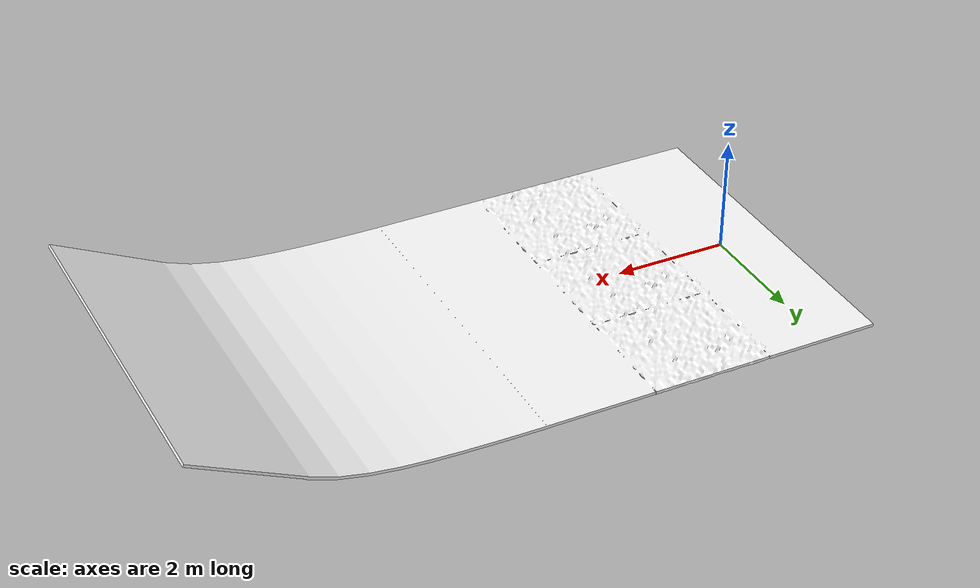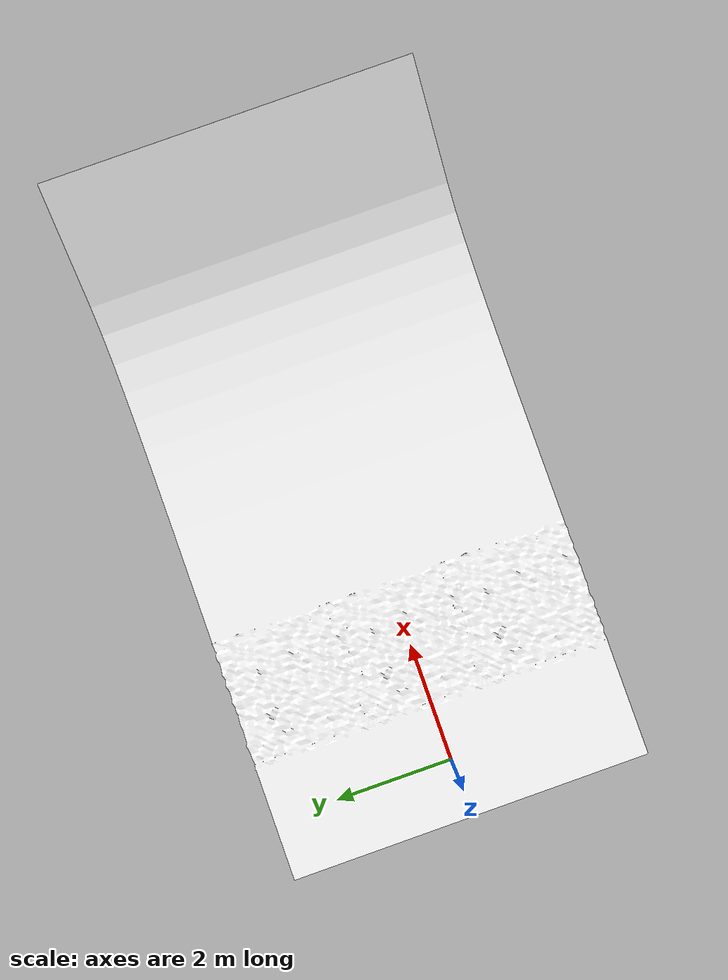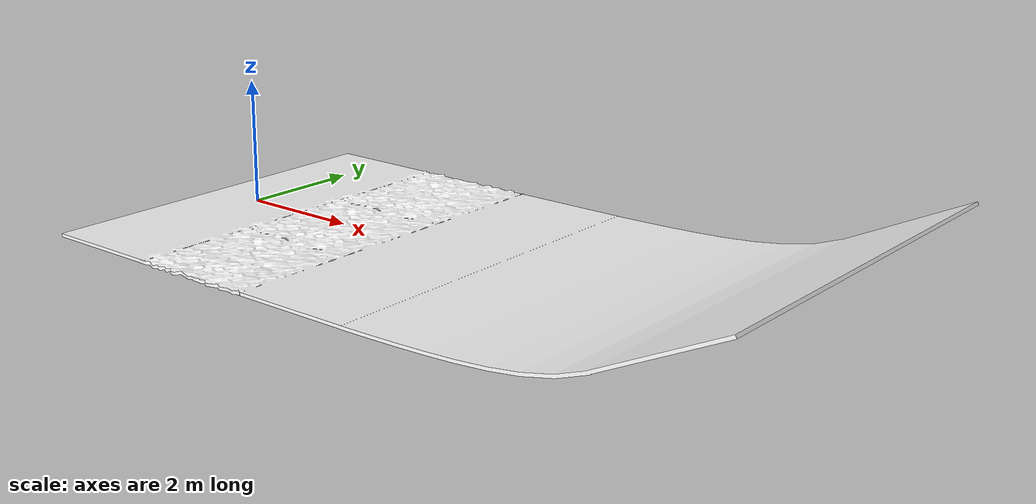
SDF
<?xml version="1.0" ?>
<sdf version='1.7'>
  <world name='default'>

    <physics name="1ms" type="ignored">
      <max_step_size>0.01</max_step_size>
      <real_time_factor>1.0</real_time_factor>
    </physics>
    <plugin
      filename="gz-sim-physics-system"
      name="gz::sim::systems::Physics">
    </plugin>
    <plugin
      filename="gz-sim-user-commands-system"
      name="gz::sim::systems::UserCommands">
    </plugin>
    <plugin
      filename="gz-sim-scene-broadcaster-system"
      name="gz::sim::systems::SceneBroadcaster">
    </plugin>
    <plugin
      filename="gz-sim-contact-system"
      name="gz::sim::systems::Contact">
    </plugin>

    <plugin
      filename="gz-sim-sensors-system"
      name="gz::sim::systems::Sensors">
      <render_engine>ogre2</render_engine>
    </plugin>
    <plugin
      filename="gz-sim-imu-system"
      name="gz::sim::systems::Imu">
    </plugin>

    <scene>
      <ambient>0.8 0.8 0.8 1</ambient>
      <background>0.7 0.7 0.7 1</background>
      <shadows>1</shadows>
    </scene>

    <light name='sun' type='directional'>
      <cast_shadows>1</cast_shadows>
      <pose>0 0 10 0 0 0</pose>
      <diffuse>1 1 1 1</diffuse>
      <specular>0.1 0.1 0.1 1</specular>
      <direction>-0.3 -0.3 -1</direction>
    </light>

    <model name='my_terrain'>
      <static>1</static>
      <link name='link'>
        <visual name='visual'>
          <geometry>
            <mesh>
              <uri>file://src/peter_robot/models/map/meshes/mapa_gazebo.obj</uri>
            </mesh>
          </geometry>
          <material>
            <diffuse>1 1 1 1</diffuse>
            <pbr>
              <metal>
                <albedo_map>file://src/peter_robot/models/map/materials/textures/texture.png</albedo_map>
                <roughness>1.0</roughness>
                <metalness>0.0</metalness>
              </metal>
            </pbr>
          </material>
        </visual>

        <collision name='collision'>
          <geometry>
            <mesh>
              <uri>file://src/peter_robot/models/map/meshes/mapa_gazebo.obj</uri>
            </mesh>
          </geometry>
        </collision>
      </link>
    </model>

    <gravity>0 0 -9.8</gravity>
    <physics type='ode'>
      <max_step_size>0.001</max_step_size>
      <real_time_factor>1</real_time_factor>
      <real_time_update_rate>1000</real_time_update_rate>
    </physics>

    <gui fullscreen='0'>
      <camera name='user_camera'>
        <pose>5 -5 2 0 0.275643 2.35619</pose>
        <view_controller>orbit</view_controller>
      </camera>
    </gui>
  </world>
</sdf>
